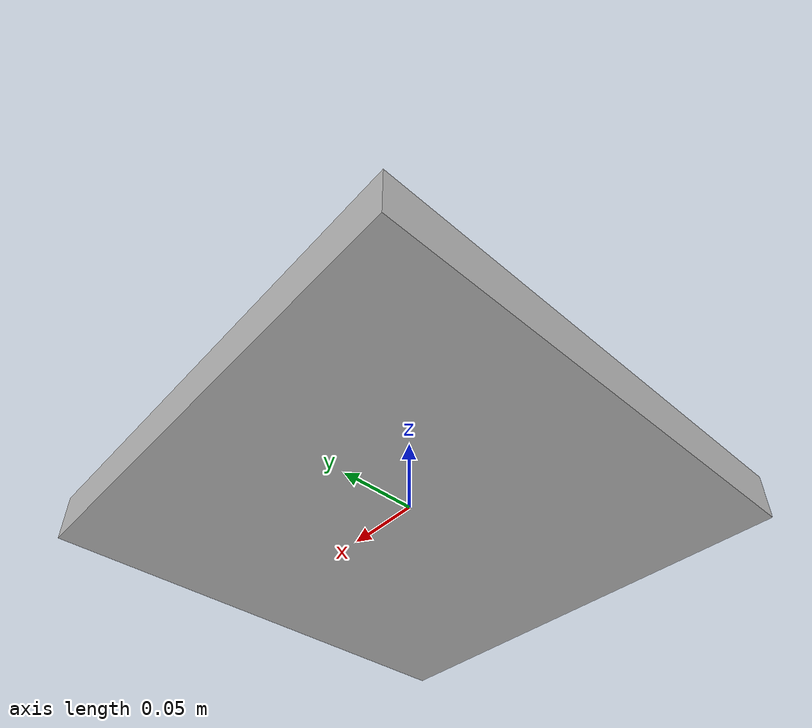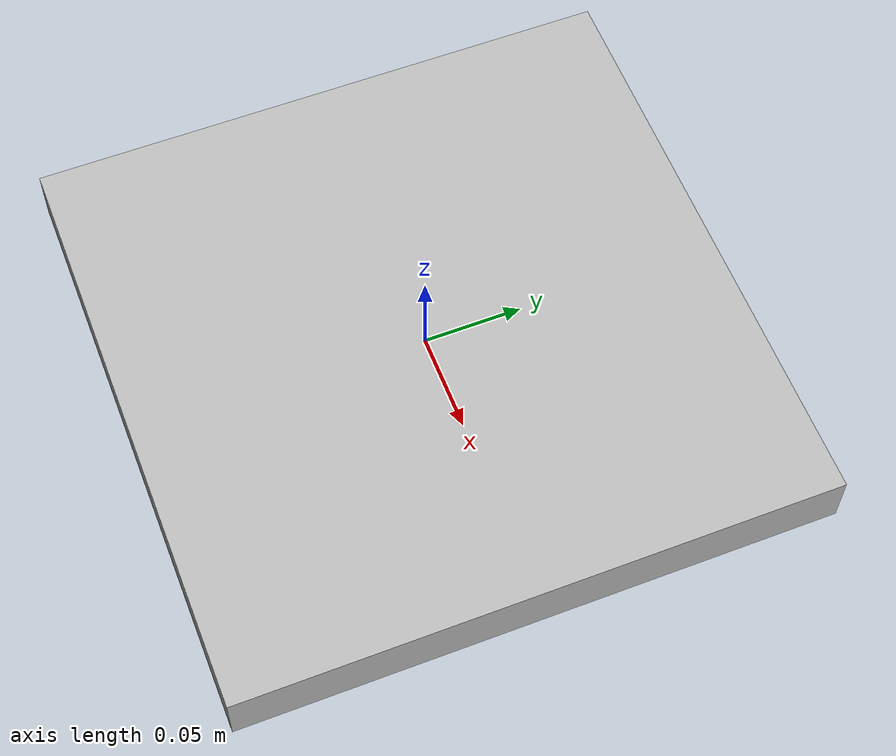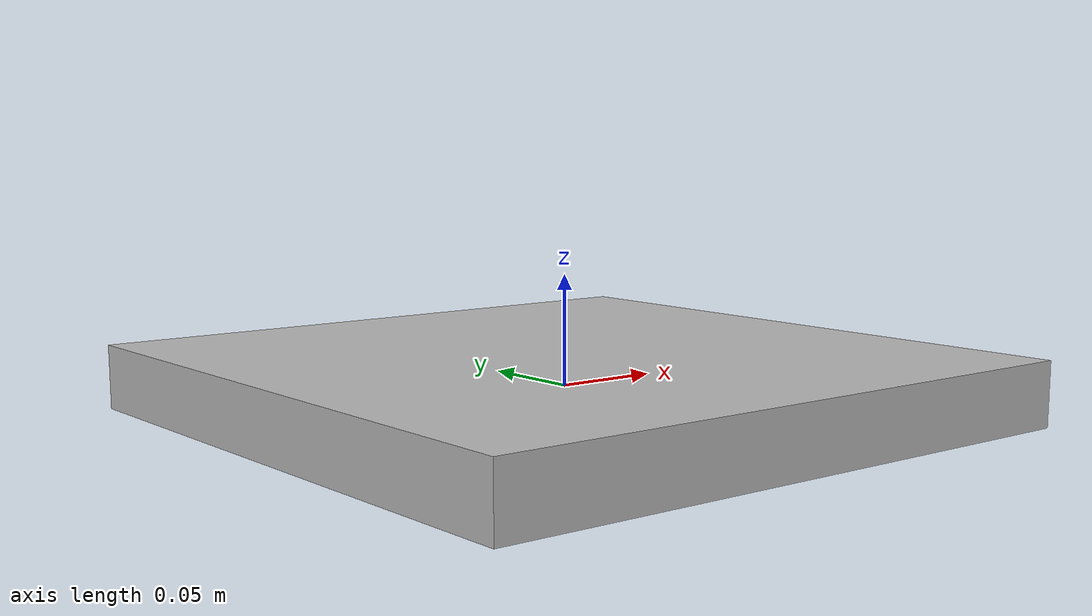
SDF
<?xml version='1.0'?>
<sdf version='1.6'>
  <model name='charging_station_1'>
    <link name='link_1'>
         <visual name='visual'>
        <pose frame=''>0 0 0 0 -0 0</pose>
        <geometry>
          <mesh>
            <uri>model://charging_station_1/meshes/charging_station_1.dae</uri>
            <scale>1.0 1.0 1.0</scale>
          </mesh>
        </geometry>
        <cast_shadows>0</cast_shadows>
        <transparency>0</transparency>
      </visual>

    </link>

    <static>1</static>
    <allow_auto_disable>1</allow_auto_disable>
  </model>
</sdf>
